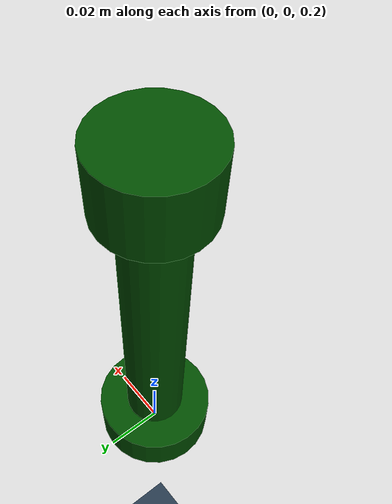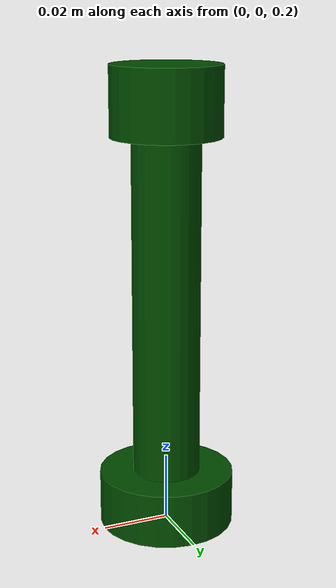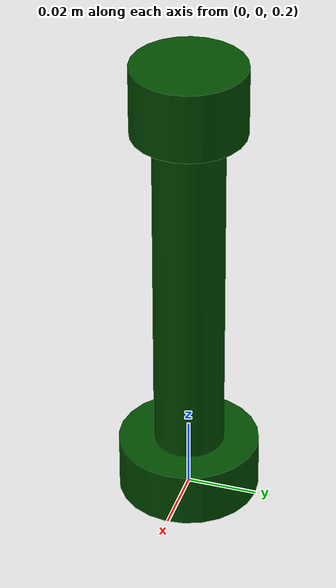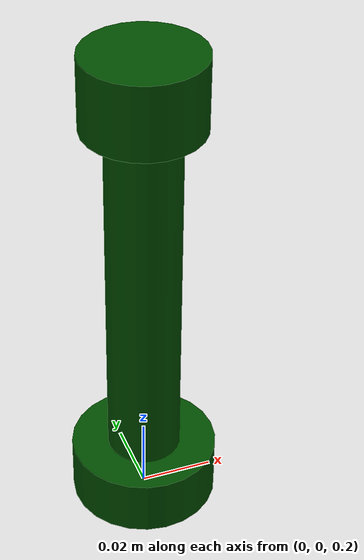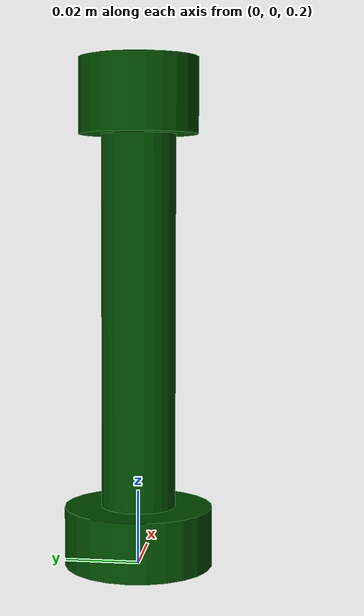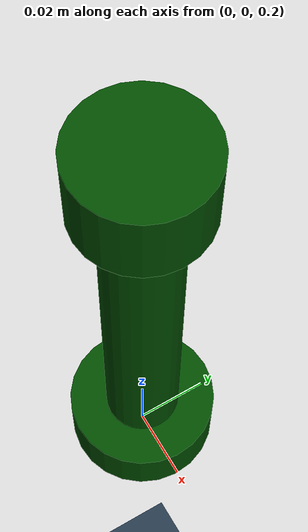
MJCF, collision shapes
<mujoco model="box_on_plane">
  <compiler meshdir="meshes" discardvisual="false" angle="radian" />
  <statistic extent="1.5" meansize=".05" />
  <option timestep="0.001" jacobian="sparse" gravity="0 0 -9.81" />
  <size nconmax="3000" njmax="4000" />
  <visual>
    <rgba haze="0.15 0.25 0.35 1" />
    <quality shadowsize="4096" />
    <map stiffness="700" shadowscale="0.5" fogstart="10" fogend="15" zfar="40" haze="0.3" />
    <scale forcewidth="0.001" />
  </visual>

  <asset>
    <texture type="skybox" builtin="gradient" rgb1="0.3 0.5 0.7" rgb2="0 0 0" width="512" height="512" />
    <texture name="texplane" type="2d" builtin="checker" rgb1=".2 .3 .4" rgb2=".1 0.15 0.2" width="512" height="512" mark="cross" markrgb=".8 .8 .8" />
    <material name="matplane" reflectance="0.0" texture="texplane" texrepeat="1 1" texuniform="true" />
    <mesh file="screw.stl" scale="0.002 0.002 0.002" />
    <mesh file="nut.stl" scale="0.002 0.002 0.002" />

  </asset>

  <custom></custom>

  <worldbody>
    <light directional="true" diffuse=".4 .4 .4" specular="0.1 0.1 0.1" pos="0 0 5.0" dir="0 0 -1" castshadow="false" />
    <light directional="true" diffuse=".6 .6 .6" specular="0.2 0.2 0.2" pos="0 0 4" dir="0 0 -1" castshadow="false" />
    <geom name="ground" type="plane" size="0 0 1" pos="0 0 0" quat="1 0 0 0" material="matplane" />

    <!-- userparams = parameters of the thread: diameter, pitch -->
    <body name="nut" pos="0 0 0.2" euler="0 0 45" user="0.02 0.003">
      <!--geom type="box" size="8.5 8.5 4" pos="0 0 4" group="3" rgba="0 0.3 0 0.2"/-->

      <geom name="nut_fill" type="cylinder" size="0.02 0.008" pos="0 0 0.008" group="3" rgba="0 0.3 0 0.2" />

      <geom type="mesh" mesh="nut" contype="0" conaffinity="0" pos="0 0 0" />

      <site name="peg" pos="0 0 0.016" />

    </body>

    <!-- userparams = parameters of the thread: diameter, pitch, length, friction -->
    <body name="screw" pos="0 0 0.276" user="0.02 0.003 0.1 0.01">
      <joint name="s0" type="slide" axis="1 0 0" />
      <joint name="s1" type="slide" axis="0 1 0" />
      <joint name="s2" type="slide" axis="0 0 1" />
      <joint name="h0" type="hinge" axis="1 0 0" />
      <joint name="h1" type="hinge" axis="0 1 0" />
      <joint name="h2" type="hinge" axis="0 0 1" />

      <geom type="cylinder" size="0.016 0.01" pos="0 0 0.05" group="3" rgba="0 0.3 0 0.2" />
      <geom name="screw_body" type="cylinder" size="0.010 0.05" pos="0 0 -0.01" group="3" rgba="0 0.3 0 0.2" />
      <geom name="screw_vis" type="mesh" pos="0 0 0.04" mesh="screw" contype="0" conaffinity="0" />
      <site name="screw_tip" pos="0 0 -0.06" />
      <!-- major diameter, pitch in m (see ISO 68-1) and length of the thread -->

    </body>

  </worldbody>

  <equality>
    <!-- For each screw joint (except rot around z-axis one constraint is required -->
    <joint active="false" joint1="s0" />
    <joint active="false" joint1="s1" />
    <joint active="false" joint1="s2" />
    <joint active="false" joint1="h0" />
    <joint active="false" joint1="h1" />
  </equality>

  <actuator>
  </actuator>
</mujoco>
